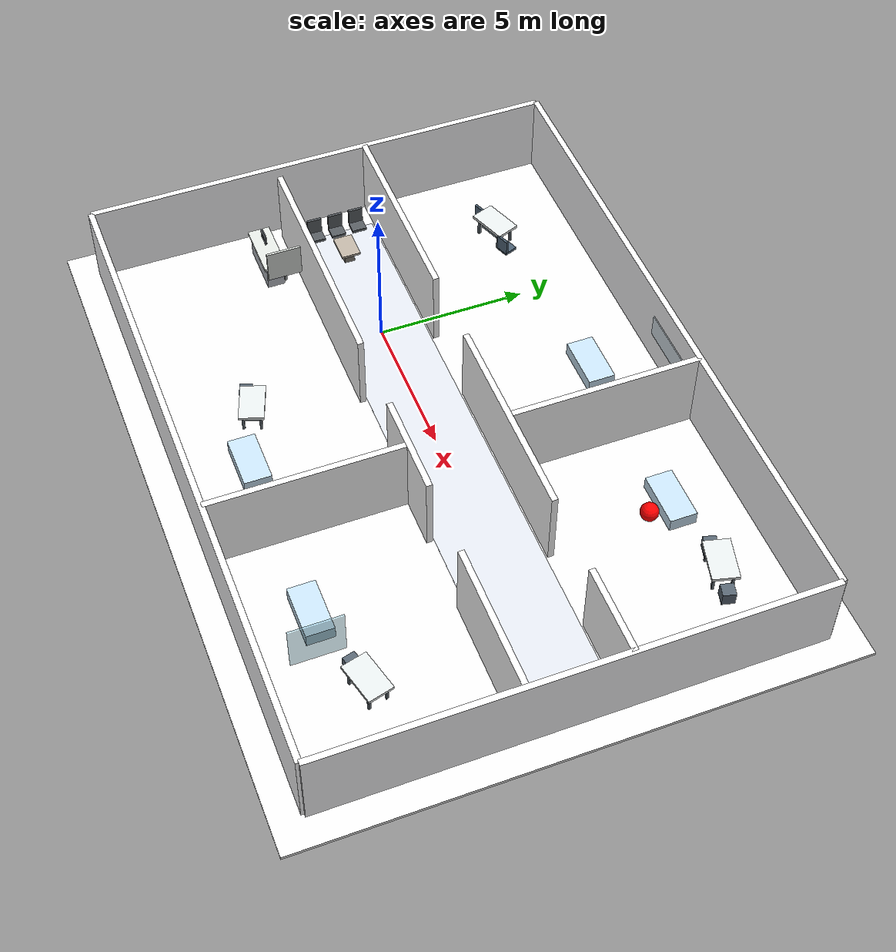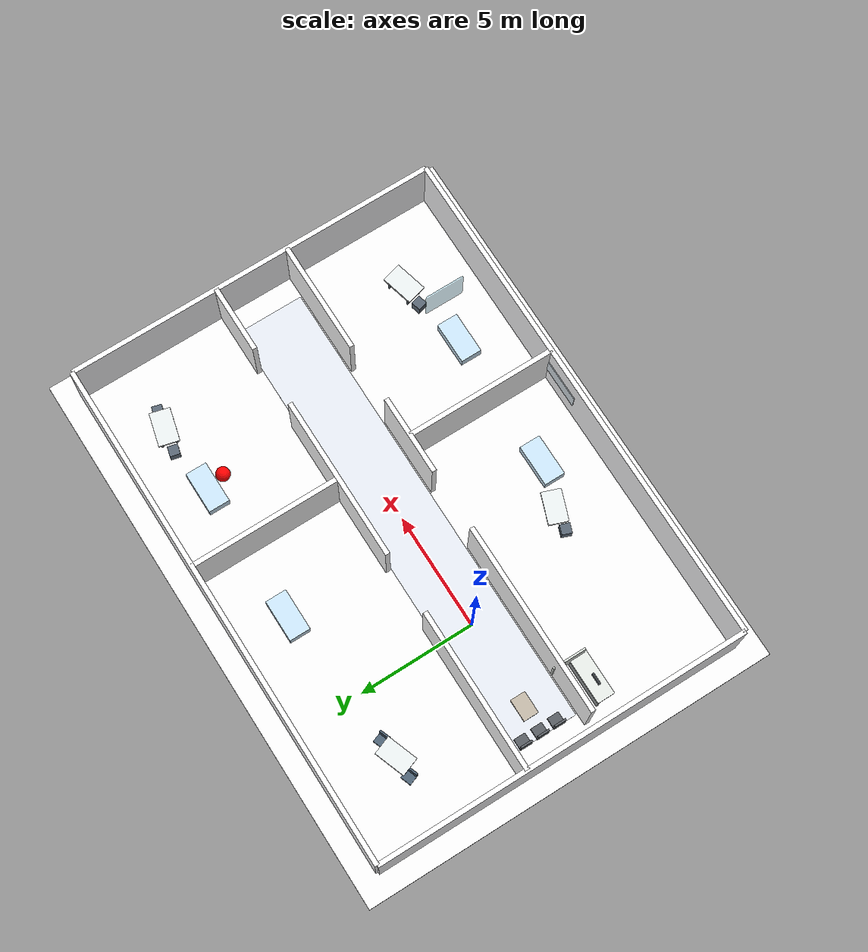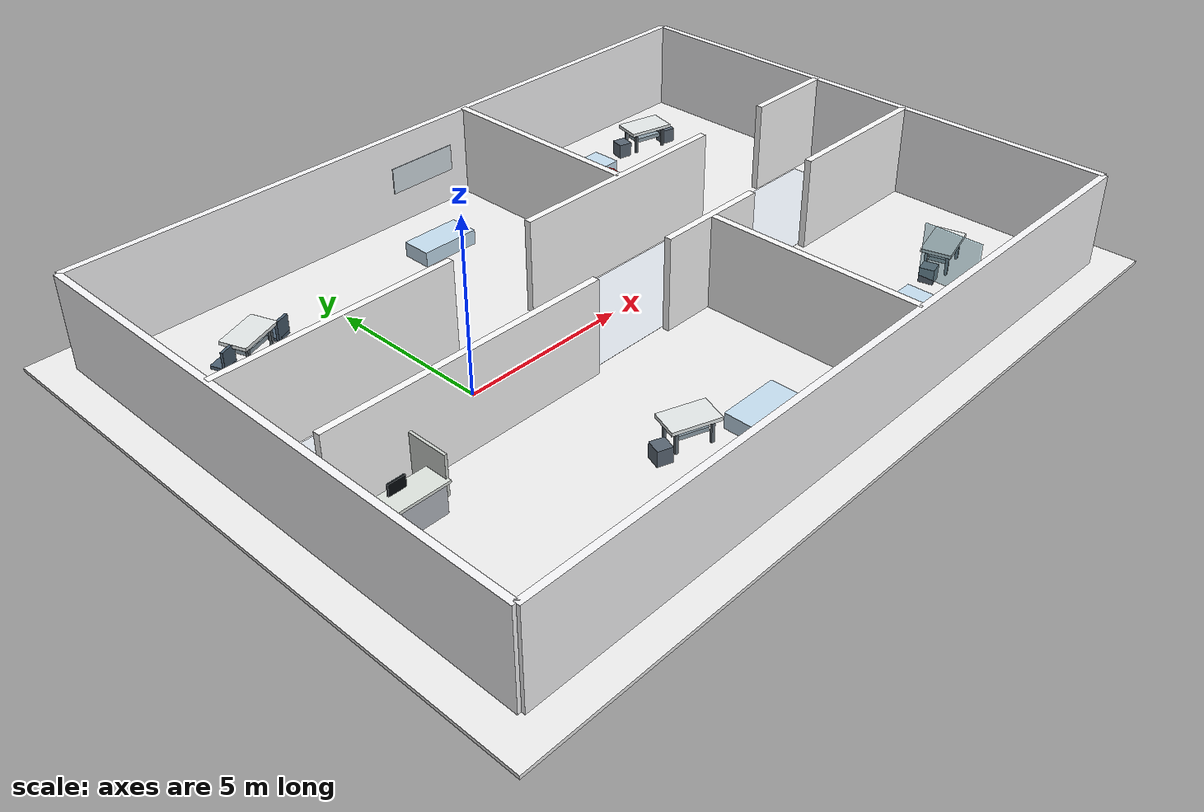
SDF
<sdf version="1.9">
 <world name="initial_test_world">
  <plugin filename="gz-sim-physics-system" name="gz::sim::systems::Physics"/>
  <plugin filename="gz-sim-user-commands-system" name="gz::sim::systems::UserCommands"/>
  <plugin filename="gz-sim-scene-broadcaster-system" name="gz::sim::systems::SceneBroadcaster"/>
  <plugin filename="gz-sim-sensors-system" name="gz::sim::systems::Sensors">
   <render_engine>ogre2</render_engine>
  </plugin>
  <plugin name="gz::sim::systems::Imu" filename="libgz-sim-imu-system.so"/>
  <plugin name="gz::sim::systems::NavSat" filename="libgz-sim-navsat-system.so"/>
  <gravity>0 0 -9.81</gravity>
  <scene>
   <ambient>0.72 0.72 0.72 1</ambient>
   <background>0.96 0.97 0.99 1</background>
   <shadows>true</shadows>
  </scene>
  <physics name="default_physics" type="ode">
   <max_step_size>0.002</max_step_size>
   <real_time_factor>1.0</real_time_factor>
   <real_time_update_rate>500</real_time_update_rate>
  </physics>
  <light type="directional" name="sun">
   <pose>0 0 12 0 0 0</pose>
   <diffuse>0.95 0.95 0.95 1</diffuse>
   <specular>0.2 0.2 0.2 1</specular>
   <direction>-0.25 0.15 -1</direction>
  </light>
  <model name="hospital_floor">
   <static>true</static>
   <pose>5 0 0 0 0 0</pose>
   <link name="link">
    <collision name="col"><geometry><box><size>24 18 0.1</size></box></geometry></collision>
    <visual name="vis">
     <geometry><box><size>24 18 0.1</size></box></geometry>
     <material><ambient>0.92 0.92 0.92 1</ambient><diffuse>0.95 0.95 0.95 1</diffuse></material>
    </visual>
   </link>
  </model>
  <model name="corridor_strip">
   <static>true</static>
   <pose>5 0 0.051 0 0 0</pose>
   <link name="link">
    <visual name="vis">
     <geometry><box><size>20 2.9 0.01</size></box></geometry>
     <material><ambient>0.88 0.90 0.93 1</ambient><diffuse>0.88 0.90 0.93 1</diffuse></material>
    </visual>
   </link>
  </model>
  <model name="wall_west">
   <static>true</static>
   <pose>-6 0 1.4 0 0 0</pose>
   <link name="link">
    <collision name="c"><geometry><box><size>0.2 16 2.8</size></box></geometry></collision>
    <visual name="v">
     <geometry><box><size>0.2 16 2.8</size></box></geometry>
     <material><ambient>0.98 0.98 0.99 1</ambient><diffuse>0.98 0.98 0.99 1</diffuse></material>
    </visual>
   </link>
  </model>
  <model name="wall_east">
   <static>true</static>
   <pose>16 0 1.4 0 0 0</pose>
   <link name="link">
    <collision name="c"><geometry><box><size>0.2 16 2.8</size></box></geometry></collision>
    <visual name="v">
     <geometry><box><size>0.2 16 2.8</size></box></geometry>
     <material><ambient>0.98 0.98 0.99 1</ambient><diffuse>0.98 0.98 0.99 1</diffuse></material>
    </visual>
   </link>
  </model>
  <model name="wall_north">
   <static>true</static>
   <pose>5 8 1.4 0 0 0</pose>
   <link name="link">
    <collision name="c"><geometry><box><size>22 0.2 2.8</size></box></geometry></collision>
    <visual name="v">
     <geometry><box><size>22 0.2 2.8</size></box></geometry>
     <material><ambient>0.98 0.98 0.99 1</ambient><diffuse>0.98 0.98 0.99 1</diffuse></material>
    </visual>
   </link>
  </model>
  <model name="wall_south">
   <static>true</static>
   <pose>5 -8 1.4 0 0 0</pose>
   <link name="link">
    <collision name="c"><geometry><box><size>22 0.2 2.8</size></box></geometry></collision>
    <visual name="v">
     <geometry><box><size>22 0.2 2.8</size></box></geometry>
     <material><ambient>0.98 0.98 0.99 1</ambient><diffuse>0.98 0.98 0.99 1</diffuse></material>
    </visual>
   </link>
  </model>
  <model name="north_seg_1">
   <static>true</static>
   <pose>-2.55 1.6 1.4 0 0 0</pose>
   <link name="link">
    <collision name="c"><geometry><box><size>6.9 0.2 2.8</size></box></geometry></collision>
    <visual name="v">
     <geometry><box><size>6.9 0.2 2.8</size></box></geometry>
     <material><ambient>1 1 1 1</ambient><diffuse>1 1 1 1</diffuse></material>
    </visual>
   </link>
  </model>
  <model name="north_seg_2">
   <static>true</static>
   <pose>7.0 1.6 1.4 0 0 0</pose>
   <link name="link">
    <collision name="c"><geometry><box><size>7.0 0.2 2.8</size></box></geometry></collision>
    <visual name="v">
     <geometry><box><size>7.0 0.2 2.8</size></box></geometry>
     <material><ambient>1 1 1 1</ambient><diffuse>1 1 1 1</diffuse></material>
    </visual>
   </link>
  </model>
  <model name="north_seg_3">
   <static>true</static>
   <pose>14.55 1.6 1.4 0 0 0</pose>
   <link name="link">
    <collision name="c"><geometry><box><size>2.9 0.2 2.8</size></box></geometry></collision>
    <visual name="v">
     <geometry><box><size>2.9 0.2 2.8</size></box></geometry>
     <material><ambient>1 1 1 1</ambient><diffuse>1 1 1 1</diffuse></material>
    </visual>
   </link>
  </model>
  <model name="south_seg_1">
   <static>true</static>
   <pose>-1.4 -1.6 1.4 0 0 0</pose>
   <link name="link">
    <collision name="c"><geometry><box><size>8.2 0.2 2.8</size></box></geometry></collision>
    <visual name="v">
     <geometry><box><size>8.2 0.2 2.8</size></box></geometry>
     <material><ambient>1 1 1 1</ambient><diffuse>1 1 1 1</diffuse></material>
    </visual>
   </link>
  </model>
  <model name="south_seg_2">
   <static>true</static>
   <pose>7.0 -1.6 1.4 0 0 0</pose>
   <link name="link">
    <collision name="c"><geometry><box><size>3.4 0.2 2.8</size></box></geometry></collision>
    <visual name="v">
     <geometry><box><size>3.4 0.2 2.8</size></box></geometry>
     <material><ambient>1 1 1 1</ambient><diffuse>1 1 1 1</diffuse></material>
    </visual>
   </link>
  </model>
  <model name="south_seg_3">
   <static>true</static>
   <pose>13.6 -1.6 1.4 0 0 0</pose>
   <link name="link">
    <collision name="c"><geometry><box><size>4.8 0.2 2.8</size></box></geometry></collision>
    <visual name="v">
     <geometry><box><size>4.8 0.2 2.8</size></box></geometry>
     <material><ambient>1 1 1 1</ambient><diffuse>1 1 1 1</diffuse></material>
    </visual>
   </link>
  </model>
  <model name="north_divider">
   <static>true</static>
   <pose>7 4.8 1.4 0 0 0</pose>
   <link name="link">
    <collision name="c"><geometry><box><size>0.2 6.4 2.8</size></box></geometry></collision>
    <visual name="v">
     <geometry><box><size>0.2 6.4 2.8</size></box></geometry>
     <material><ambient>0.99 0.99 0.99 1</ambient><diffuse>0.99 0.99 0.99 1</diffuse></material>
    </visual>
   </link>
  </model>
  <model name="south_divider">
   <static>true</static>
   <pose>7 -4.8 1.4 0 0 0</pose>
   <link name="link">
    <collision name="c"><geometry><box><size>0.2 6.4 2.8</size></box></geometry></collision>
    <visual name="v">
     <geometry><box><size>0.2 6.4 2.8</size></box></geometry>
     <material><ambient>0.99 0.99 0.99 1</ambient><diffuse>0.99 0.99 0.99 1</diffuse></material>
    </visual>
   </link>
  </model>
  <model name="bed_n1">
   <static>true</static>
   <pose>4.0 5.8 0.25 0 0 0</pose>
   <link name="link">
    <collision name="c"><geometry><box><size>1.8 0.9 0.5</size></box></geometry></collision>
    <visual name="v">
     <geometry><box><size>1.8 0.9 0.5</size></box></geometry>
     <material><ambient>0.78 0.88 0.95 1</ambient><diffuse>0.78 0.88 0.95 1</diffuse></material>
    </visual>
   </link>
  </model>
  <model name="bed_n2">
   <static>true</static>
   <pose>10.0 5.8 0.25 0 0 0</pose>
   <link name="link">
    <collision name="c"><geometry><box><size>1.8 0.9 0.5</size></box></geometry></collision>
    <visual name="v">
     <geometry><box><size>1.8 0.9 0.5</size></box></geometry>
     <material><ambient>0.78 0.88 0.95 1</ambient><diffuse>0.78 0.88 0.95 1</diffuse></material>
    </visual>
   </link>
  </model>
  <model name="bed_s1">
   <static>true</static>
   <pose>4.0 -5.8 0.25 0 0 0</pose>
   <link name="link">
    <collision name="c"><geometry><box><size>1.8 0.9 0.5</size></box></geometry></collision>
    <visual name="v">
     <geometry><box><size>1.8 0.9 0.5</size></box></geometry>
     <material><ambient>0.78 0.88 0.95 1</ambient><diffuse>0.78 0.88 0.95 1</diffuse></material>
    </visual>
   </link>
  </model>
  <model name="bed_s2">
   <static>true</static>
   <pose>10.0 -5.8 0.25 0 0 0</pose>
   <link name="link">
    <collision name="c"><geometry><box><size>1.8 0.9 0.5</size></box></geometry></collision>
    <visual name="v">
     <geometry><box><size>1.8 0.9 0.5</size></box></geometry>
     <material><ambient>0.78 0.88 0.95 1</ambient><diffuse>0.78 0.88 0.95 1</diffuse></material>
    </visual>
   </link>
  </model>
  <model name="nurse_desk">
   <static>true</static>
   <pose>-4.2 -2.6 0.45 0 0 0</pose>
   <link name="link">
    <collision name="c"><geometry><box><size>1.8 0.6 0.9</size></box></geometry></collision>
    <visual name="v">
     <geometry><box><size>1.8 0.6 0.9</size></box></geometry>
     <material><ambient>0.72 0.74 0.77 1</ambient><diffuse>0.72 0.74 0.77 1</diffuse></material>
    </visual>
   </link>
  </model>
  <model name="exam_table_n1">
   <static>true</static>
   <pose>-2.8 5.2 0.55 0 0 0.35</pose>
   <link name="link">
    <collision name="c"><geometry><box><size>1.25 0.72 0.78</size></box></geometry></collision>
    <visual name="top">
     <pose>0 0 0.25 0 0 0</pose>
     <geometry><box><size>1.35 0.82 0.10</size></box></geometry>
     <material>
      <ambient>0.90 0.92 0.92 1</ambient>
      <diffuse>0.90 0.92 0.92 1</diffuse>
      <specular>0.55 0.55 0.55 1</specular>
     </material>
    </visual>
    <visual name="base">
     <pose>0 0 -0.08 0 0 0</pose>
     <geometry><box><size>0.85 0.45 0.12</size></box></geometry>
     <material><ambient>0.56 0.63 0.67 1</ambient><diffuse>0.56 0.63 0.67 1</diffuse></material>
    </visual>
    <visual name="leg_1">
     <pose>0.48 0.28 -0.16 0 0 0</pose>
     <geometry><box><size>0.08 0.08 0.56</size></box></geometry>
     <material><ambient>0.38 0.42 0.45 1</ambient><diffuse>0.38 0.42 0.45 1</diffuse></material>
    </visual>
    <visual name="leg_2">
     <pose>-0.48 0.28 -0.16 0 0 0</pose>
     <geometry><box><size>0.08 0.08 0.56</size></box></geometry>
     <material><ambient>0.38 0.42 0.45 1</ambient><diffuse>0.38 0.42 0.45 1</diffuse></material>
    </visual>
    <visual name="leg_3">
     <pose>0.48 -0.28 -0.16 0 0 0</pose>
     <geometry><box><size>0.08 0.08 0.56</size></box></geometry>
     <material><ambient>0.38 0.42 0.45 1</ambient><diffuse>0.38 0.42 0.45 1</diffuse></material>
    </visual>
    <visual name="leg_4">
     <pose>-0.48 -0.28 -0.16 0 0 0</pose>
     <geometry><box><size>0.08 0.08 0.56</size></box></geometry>
     <material><ambient>0.38 0.42 0.45 1</ambient><diffuse>0.38 0.42 0.45 1</diffuse></material>
    </visual>
   </link>
  </model>
  <model name="chair_n1_a">
   <static>true</static>
   <pose>-3.65 5.15 0.25 0 0 0.35</pose>
   <link name="link">
    <collision name="c"><geometry><box><size>0.42 0.42 0.5</size></box></geometry></collision>
    <visual name="seat">
     <pose>0 0 0.04 0 0 0</pose>
     <geometry><box><size>0.46 0.46 0.10</size></box></geometry>
     <material><ambient>0.30 0.38 0.45 1</ambient><diffuse>0.30 0.38 0.45 1</diffuse></material>
    </visual>
    <visual name="back">
     <pose>0 -0.19 0.31 0 0 0</pose>
     <geometry><box><size>0.46 0.08 0.54</size></box></geometry>
     <material><ambient>0.30 0.38 0.45 1</ambient><diffuse>0.30 0.38 0.45 1</diffuse></material>
    </visual>
   </link>
  </model>
  <model name="chair_n1_b">
   <static>true</static>
   <pose>-1.95 5.3 0.25 0 0 0.35</pose>
   <link name="link">
    <collision name="c"><geometry><box><size>0.42 0.42 0.5</size></box></geometry></collision>
    <visual name="seat">
     <pose>0 0 0.04 0 0 0</pose>
     <geometry><box><size>0.46 0.46 0.10</size></box></geometry>
     <material><ambient>0.30 0.38 0.45 1</ambient><diffuse>0.30 0.38 0.45 1</diffuse></material>
    </visual>
    <visual name="back">
     <pose>0 -0.19 0.31 0 0 0</pose>
     <geometry><box><size>0.46 0.08 0.54</size></box></geometry>
     <material><ambient>0.30 0.38 0.45 1</ambient><diffuse>0.30 0.38 0.45 1</diffuse></material>
    </visual>
   </link>
  </model>
  <model name="exam_table_n2">
   <static>true</static>
   <pose>12.9 6.0 0.55 0 0 -0.25</pose>
   <link name="link">
    <collision name="c"><geometry><box><size>1.28 0.76 0.78</size></box></geometry></collision>
    <visual name="top">
     <pose>0 0 0.25 0 0 0</pose>
     <geometry><box><size>1.42 0.86 0.10</size></box></geometry>
     <material>
      <ambient>0.90 0.92 0.92 1</ambient>
      <diffuse>0.90 0.92 0.92 1</diffuse>
      <specular>0.55 0.55 0.55 1</specular>
     </material>
    </visual>
    <visual name="base">
     <pose>0 0 -0.08 0 0 0</pose>
     <geometry><box><size>0.88 0.48 0.12</size></box></geometry>
     <material><ambient>0.56 0.63 0.67 1</ambient><diffuse>0.56 0.63 0.67 1</diffuse></material>
    </visual>
    <visual name="leg_1">
     <pose>0.50 0.30 -0.16 0 0 0</pose>
     <geometry><box><size>0.08 0.08 0.56</size></box></geometry>
     <material><ambient>0.38 0.42 0.45 1</ambient><diffuse>0.38 0.42 0.45 1</diffuse></material>
    </visual>
    <visual name="leg_2">
     <pose>-0.50 0.30 -0.16 0 0 0</pose>
     <geometry><box><size>0.08 0.08 0.56</size></box></geometry>
     <material><ambient>0.38 0.42 0.45 1</ambient><diffuse>0.38 0.42 0.45 1</diffuse></material>
    </visual>
    <visual name="leg_3">
     <pose>0.50 -0.30 -0.16 0 0 0</pose>
     <geometry><box><size>0.08 0.08 0.56</size></box></geometry>
     <material><ambient>0.38 0.42 0.45 1</ambient><diffuse>0.38 0.42 0.45 1</diffuse></material>
    </visual>
    <visual name="leg_4">
     <pose>-0.50 -0.30 -0.16 0 0 0</pose>
     <geometry><box><size>0.08 0.08 0.56</size></box></geometry>
     <material><ambient>0.38 0.42 0.45 1</ambient><diffuse>0.38 0.42 0.45 1</diffuse></material>
    </visual>
   </link>
  </model>
  <model name="chair_n2_a">
   <static>true</static>
   <pose>12.0 6.15 0.25 0 0 -0.25</pose>
   <link name="link">
    <collision name="c"><geometry><box><size>0.42 0.42 0.5</size></box></geometry></collision>
    <visual name="v">
     <geometry><box><size>0.42 0.42 0.5</size></box></geometry>
     <material><ambient>0.35 0.40 0.45 1</ambient><diffuse>0.35 0.40 0.45 1</diffuse></material>
    </visual>
   </link>
  </model>
  <model name="chair_n2_b">
   <static>true</static>
   <pose>13.75 5.85 0.25 0 0 -0.25</pose>
   <link name="link">
    <collision name="c"><geometry><box><size>0.42 0.42 0.5</size></box></geometry></collision>
    <visual name="v">
     <geometry><box><size>0.42 0.42 0.5</size></box></geometry>
     <material><ambient>0.35 0.40 0.45 1</ambient><diffuse>0.35 0.40 0.45 1</diffuse></material>
    </visual>
   </link>
  </model>
  <model name="exam_table_s1">
   <static>true</static>
   <pose>2.1 -5.1 0.55 0 0 -0.35</pose>
   <link name="link">
    <collision name="c"><geometry><box><size>1.25 0.72 0.78</size></box></geometry></collision>
    <visual name="top">
     <pose>0 0 0.25 0 0 0</pose>
     <geometry><box><size>1.35 0.82 0.10</size></box></geometry>
     <material>
      <ambient>0.90 0.92 0.92 1</ambient>
      <diffuse>0.90 0.92 0.92 1</diffuse>
      <specular>0.55 0.55 0.55 1</specular>
     </material>
    </visual>
    <visual name="base">
     <pose>0 0 -0.08 0 0 0</pose>
     <geometry><box><size>0.85 0.45 0.12</size></box></geometry>
     <material><ambient>0.56 0.63 0.67 1</ambient><diffuse>0.56 0.63 0.67 1</diffuse></material>
    </visual>
    <visual name="leg_1">
     <pose>0.48 0.28 -0.16 0 0 0</pose>
     <geometry><box><size>0.08 0.08 0.56</size></box></geometry>
     <material><ambient>0.38 0.42 0.45 1</ambient><diffuse>0.38 0.42 0.45 1</diffuse></material>
    </visual>
    <visual name="leg_2">
     <pose>-0.48 0.28 -0.16 0 0 0</pose>
     <geometry><box><size>0.08 0.08 0.56</size></box></geometry>
     <material><ambient>0.38 0.42 0.45 1</ambient><diffuse>0.38 0.42 0.45 1</diffuse></material>
    </visual>
    <visual name="leg_3">
     <pose>0.48 -0.28 -0.16 0 0 0</pose>
     <geometry><box><size>0.08 0.08 0.56</size></box></geometry>
     <material><ambient>0.38 0.42 0.45 1</ambient><diffuse>0.38 0.42 0.45 1</diffuse></material>
    </visual>
    <visual name="leg_4">
     <pose>-0.48 -0.28 -0.16 0 0 0</pose>
     <geometry><box><size>0.08 0.08 0.56</size></box></geometry>
     <material><ambient>0.38 0.42 0.45 1</ambient><diffuse>0.38 0.42 0.45 1</diffuse></material>
    </visual>
   </link>
  </model>
  <model name="chair_s1_a">
   <static>true</static>
   <pose>1.2 -5.05 0.25 0 0 -0.35</pose>
   <link name="link">
    <collision name="c"><geometry><box><size>0.42 0.42 0.5</size></box></geometry></collision>
    <visual name="v">
     <geometry><box><size>0.42 0.42 0.5</size></box></geometry>
     <material><ambient>0.35 0.40 0.45 1</ambient><diffuse>0.35 0.40 0.45 1</diffuse></material>
    </visual>
   </link>
  </model>
  <model name="exam_table_s2">
   <static>true</static>
   <pose>13.0 -5.1 0.55 0 0 0.25</pose>
   <link name="link">
    <collision name="c"><geometry><box><size>1.28 0.76 0.78</size></box></geometry></collision>
    <visual name="top">
     <pose>0 0 0.25 0 0 0</pose>
     <geometry><box><size>1.42 0.86 0.10</size></box></geometry>
     <material>
      <ambient>0.90 0.92 0.92 1</ambient>
      <diffuse>0.90 0.92 0.92 1</diffuse>
      <specular>0.55 0.55 0.55 1</specular>
     </material>
    </visual>
    <visual name="base">
     <pose>0 0 -0.08 0 0 0</pose>
     <geometry><box><size>0.88 0.48 0.12</size></box></geometry>
     <material><ambient>0.56 0.63 0.67 1</ambient><diffuse>0.56 0.63 0.67 1</diffuse></material>
    </visual>
    <visual name="leg_1">
     <pose>0.50 0.30 -0.16 0 0 0</pose>
     <geometry><box><size>0.08 0.08 0.56</size></box></geometry>
     <material><ambient>0.38 0.42 0.45 1</ambient><diffuse>0.38 0.42 0.45 1</diffuse></material>
    </visual>
    <visual name="leg_2">
     <pose>-0.50 0.30 -0.16 0 0 0</pose>
     <geometry><box><size>0.08 0.08 0.56</size></box></geometry>
     <material><ambient>0.38 0.42 0.45 1</ambient><diffuse>0.38 0.42 0.45 1</diffuse></material>
    </visual>
    <visual name="leg_3">
     <pose>0.50 -0.30 -0.16 0 0 0</pose>
     <geometry><box><size>0.08 0.08 0.56</size></box></geometry>
     <material><ambient>0.38 0.42 0.45 1</ambient><diffuse>0.38 0.42 0.45 1</diffuse></material>
    </visual>
    <visual name="leg_4">
     <pose>-0.50 -0.30 -0.16 0 0 0</pose>
     <geometry><box><size>0.08 0.08 0.56</size></box></geometry>
     <material><ambient>0.38 0.42 0.45 1</ambient><diffuse>0.38 0.42 0.45 1</diffuse></material>
    </visual>
   </link>
  </model>
  <model name="chair_s2_a">
   <static>true</static>
   <pose>12.1 -5.25 0.25 0 0 0.25</pose>
   <link name="link">
    <collision name="c"><geometry><box><size>0.42 0.42 0.5</size></box></geometry></collision>
    <visual name="v">
     <geometry><box><size>0.42 0.42 0.5</size></box></geometry>
     <material><ambient>0.35 0.40 0.45 1</ambient><diffuse>0.35 0.40 0.45 1</diffuse></material>
    </visual>
   </link>
  </model>
  <model name="reception_waiting_area">
   <static>true</static>
   <link name="link">
    <collision name="chair_1_c">
     <pose>-4.8 0.85 0.25 0 0 1.5708</pose>
     <geometry><box><size>0.50 0.55 0.50</size></box></geometry>
    </collision>
    <visual name="chair_1_seat">
     <pose>-4.8 0.85 0.30 0 0 1.5708</pose>
     <geometry><box><size>0.50 0.46 0.10</size></box></geometry>
     <material><ambient>0.34 0.36 0.38 1</ambient><diffuse>0.34 0.36 0.38 1</diffuse></material>
    </visual>
    <visual name="chair_1_back">
     <pose>-5.02 0.85 0.62 0 0 1.5708</pose>
     <geometry><box><size>0.50 0.08 0.58</size></box></geometry>
     <material><ambient>0.34 0.36 0.38 1</ambient><diffuse>0.34 0.36 0.38 1</diffuse></material>
    </visual>
    <collision name="chair_2_c">
     <pose>-4.8 0.10 0.25 0 0 1.5708</pose>
     <geometry><box><size>0.50 0.55 0.50</size></box></geometry>
    </collision>
    <visual name="chair_2_seat">
     <pose>-4.8 0.10 0.30 0 0 1.5708</pose>
     <geometry><box><size>0.50 0.46 0.10</size></box></geometry>
     <material><ambient>0.34 0.36 0.38 1</ambient><diffuse>0.34 0.36 0.38 1</diffuse></material>
    </visual>
    <visual name="chair_2_back">
     <pose>-5.02 0.10 0.62 0 0 1.5708</pose>
     <geometry><box><size>0.50 0.08 0.58</size></box></geometry>
     <material><ambient>0.34 0.36 0.38 1</ambient><diffuse>0.34 0.36 0.38 1</diffuse></material>
    </visual>
    <collision name="chair_3_c">
     <pose>-4.8 -0.65 0.25 0 0 1.5708</pose>
     <geometry><box><size>0.50 0.55 0.50</size></box></geometry>
    </collision>
    <visual name="chair_3_seat">
     <pose>-4.8 -0.65 0.30 0 0 1.5708</pose>
     <geometry><box><size>0.50 0.46 0.10</size></box></geometry>
     <material><ambient>0.34 0.36 0.38 1</ambient><diffuse>0.34 0.36 0.38 1</diffuse></material>
    </visual>
    <visual name="chair_3_back">
     <pose>-5.02 -0.65 0.62 0 0 1.5708</pose>
     <geometry><box><size>0.50 0.08 0.58</size></box></geometry>
     <material><ambient>0.34 0.36 0.38 1</ambient><diffuse>0.34 0.36 0.38 1</diffuse></material>
    </visual>
    <collision name="coffee_table_c">
     <pose>-3.75 0.10 0.25 0 0 0</pose>
     <geometry><box><size>0.85 0.55 0.50</size></box></geometry>
    </collision>
    <visual name="coffee_table_top">
     <pose>-3.75 0.10 0.52 0 0 0</pose>
     <geometry><box><size>0.95 0.65 0.08</size></box></geometry>
     <material><ambient>0.74 0.70 0.64 1</ambient><diffuse>0.74 0.70 0.64 1</diffuse></material>
    </visual>
    <visual name="coffee_table_base">
     <pose>-3.75 0.10 0.27 0 0 0</pose>
     <geometry><box><size>0.55 0.35 0.42</size></box></geometry>
     <material><ambient>0.50 0.48 0.44 1</ambient><diffuse>0.50 0.48 0.44 1</diffuse></material>
    </visual>
    <visual name="reception_partition">
     <pose>-3.25 -2.15 1.05 0 0 0</pose>
     <geometry><box><size>0.08 1.45 1.15</size></box></geometry>
     <material><ambient>0.82 0.84 0.82 1</ambient><diffuse>0.82 0.84 0.82 1</diffuse></material>
    </visual>
    <visual name="front_counter_panel">
     <pose>-4.2 -2.27 0.55 0 0 0</pose>
     <geometry><box><size>1.95 0.08 0.62</size></box></geometry>
     <material><ambient>0.58 0.60 0.60 1</ambient><diffuse>0.58 0.60 0.60 1</diffuse></material>
    </visual>
   </link>
  </model>
  <model name="hospital_details">
   <static>true</static>
   <link name="link">
    <visual name="nurse_counter_top">
     <pose>-4.2 -2.6 0.94 0 0 0</pose>
     <geometry><box><size>1.95 0.75 0.08</size></box></geometry>
     <material><ambient>0.88 0.90 0.88 1</ambient><diffuse>0.88 0.90 0.88 1</diffuse></material>
    </visual>
    <visual name="nurse_monitor">
     <pose>-4.4 -2.62 1.35 0 0 0</pose>
     <geometry><box><size>0.48 0.06 0.32</size></box></geometry>
     <material>
      <ambient>0.02 0.04 0.05 1</ambient>
      <diffuse>0.02 0.04 0.05 1</diffuse>
      <emissive>0.04 0.22 0.28 1</emissive>
     </material>
    </visual>
    <visual name="privacy_curtain_s2">
     <pose>11.6 -6.1 1.25 0 0 0</pose>
     <geometry><box><size>0.06 1.7 1.6</size></box></geometry>
     <material><ambient>0.62 0.82 0.88 0.55</ambient><diffuse>0.62 0.82 0.88 0.55</diffuse></material>
    </visual>
    <visual name="wall_panel_north">
     <pose>5.2 7.89 1.45 0 0 0</pose>
     <geometry><box><size>2.2 0.04 0.8</size></box></geometry>
     <material><ambient>0.84 0.88 0.91 1</ambient><diffuse>0.84 0.88 0.91 1</diffuse></material>
    </visual>
    <visual name="wall_panel_south">
     <pose>6.2 -7.89 1.45 0 0 0</pose>
     <geometry><box><size>2.2 0.04 0.8</size></box></geometry>
     <material><ambient>0.84 0.88 0.91 1</ambient><diffuse>0.84 0.88 0.91 1</diffuse></material>
    </visual>
   </link>
  </model>
  <light type="point" name="sphere_light">
   <pose>10.2 5.0 2.0 0 0 0</pose>
   <diffuse>1 0.8 0.8 1</diffuse>
   <specular>0.2 0.2 0.2 1</specular>
   <attenuation>
    <range>12</range>
    <constant>0.7</constant>
    <linear>0.02</linear>
    <quadratic>0.001</quadratic>
   </attenuation>
   <cast_shadows>false</cast_shadows>
  </light>
  <model name="red_sphere">
   <static>true</static>
   <pose>10.2 5.0 0.3 0 0 0</pose>
   <link name="link">
    <collision name="collision"><geometry><sphere><radius>0.3</radius></sphere></geometry></collision>
    <visual name="visual">
     <geometry><sphere><radius>0.3</radius></sphere></geometry>
     <material><ambient>1 0 0 1</ambient><diffuse>1 0 0 1</diffuse><specular>0.4 0.1 0.1 1</specular></material>
    </visual>
   </link>
  </model>
 </world>
</sdf>
